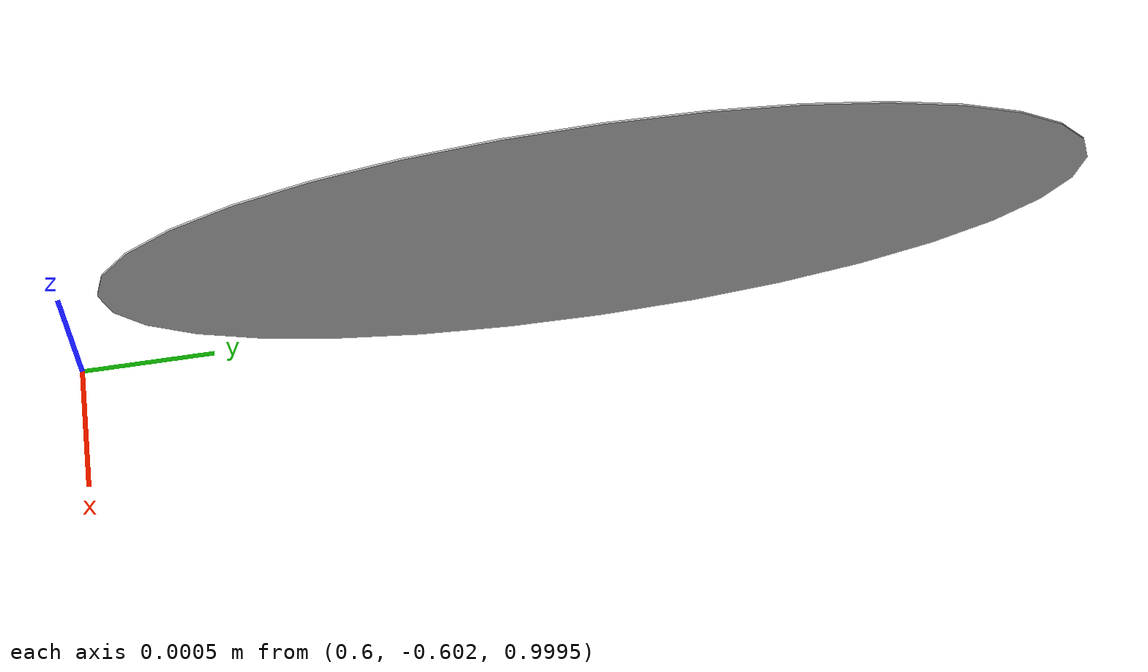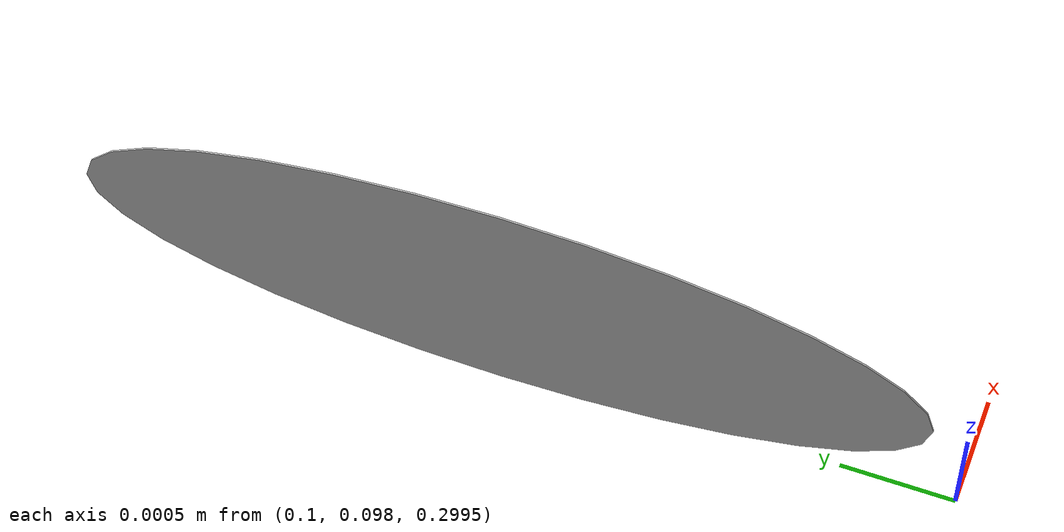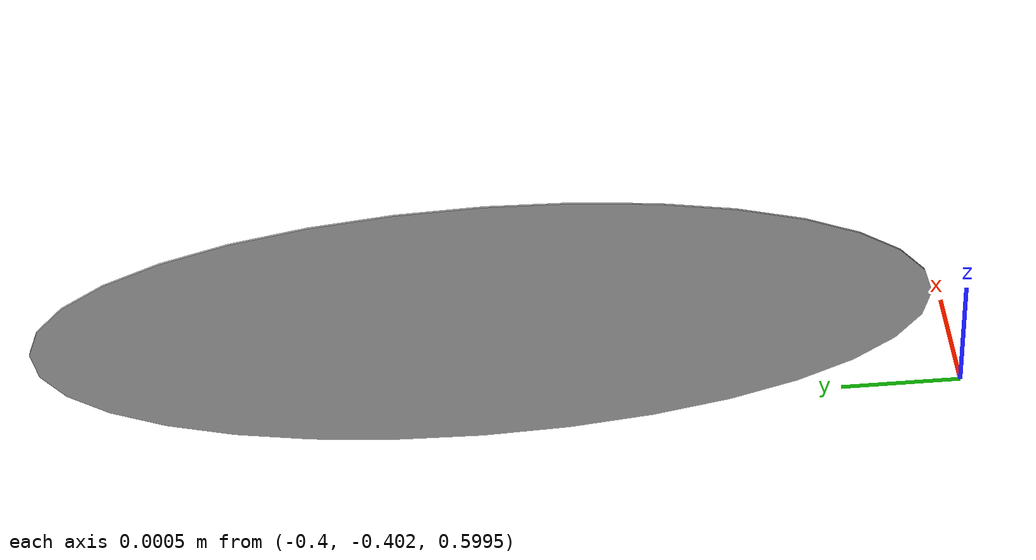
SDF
<sdf version="1.4">
	<world name="default">
		<!-- Lights -->
		<include>
			<uri>model://sun</uri>
		</include>

		<model name='ground_plane'>
			<static>1</static>
			<link name='link'>
				<collision name='collision'>
					<geometry>
						<plane>
							<normal>0 0 1</normal>
							<size>100 100</size>
						</plane>
					</geometry>
					<surface>
						<friction>
							<ode>
								<mu>100</mu>
								<mu2>50</mu2>
							</ode>
						</friction>
						<bounce/>
						<contact>
							<ode/>
						</contact>
					</surface>
					<max_contacts>10</max_contacts>
				</collision>
				<visual name='visual'>
					<cast_shadows>0</cast_shadows>
					<geometry>
						<plane>
							<normal>0 0 1</normal>
							<size>100 100</size>
						</plane>
					</geometry>
					<material>
						<script>
							<uri>file://media/materials/scripts/gazebo.material</uri>
							<name>Gazebo/Grey</name>
						</script>
					</material>
				</visual>
				<velocity_decay>
					<linear>0</linear>
					<angular>0</angular>
				</velocity_decay>
				<self_collide>0</self_collide>
				<kinematic>0</kinematic>
				<gravity>1</gravity>
			</link>
			<!-- camera -->
			<link name='camera_link'>
				<pose>0 0 2.4384 0 1.57 1.57</pose> <!-- camera placed at a heigth of 8 feet-->
				<inertial>
					<mass>0.1</mass>
					<inertia>
						<ixx>1</ixx>
						<ixy>0</ixy>
						<ixz>0</ixz>
						<iyy>1</iyy>
						<iyz>0</iyz>
						<izz>1</izz>
					</inertia>
				</inertial>
				<collision name='collision'>
					<geometry>
						<box>
							<size>0.001 0.001 0.001</size>
						</box>
					</geometry>
					<max_contacts>10</max_contacts>
					<surface>
						<bounce/>
						<friction>
							<ode/>
						</friction>
						<contact>
							<ode/>
						</contact>
					</surface>
				</collision>
				<visual name='visual'>
					<geometry>
						<box>
							<size>0.001 0.001 0.001</size>
						</box>
					</geometry>
				</visual>
				<sensor name='camera' type='camera'>
					<camera name='overhead_cam'>
						<horizontal_fov>1.0</horizontal_fov>
						<image>
							<width>1280</width>
							<height>1280</height>
						</image>
						<clip>
							<near>0.1</near>
							<far>200</far>
						</clip>

					</camera>
					<plugin name='camera_control' filename='libgazebo_ros_camera.so'>
						<cameraName>/overhead_cam</cameraName>
						<alwaysOn>true</alwaysOn>
						<updateRate>30</updateRate>
						<imageTopicName>/overhead_cam/image_rect</imageTopicName>
						<cameraInfoTopicName>/overhead_cam/camera_info</cameraInfoTopicName>
						<frameName>overhead_cam</frameName>
					</plugin>

					<always_on>1</always_on>
					<update_rate>30</update_rate>
					<visualize>0</visualize>
				</sensor>
				<velocity_decay>
					<linear>0</linear>
					<angular>0</angular>
				</velocity_decay>
				<self_collide>0</self_collide>
				<kinematic>0</kinematic>
				<gravity>1</gravity>
			</link>
			<!-- camera link complete -->

			<!-- whycon markers -->
		</model>
		<model name="Marker1">
			<static>true</static>
			<link name="link">
				<pose>0 0 0.2 0 1.570796327 0</pose>
				<visual name="visual">
					<geometry>
						<mesh>
							<uri>model://whycon_marker/meshes/whycon_marker.dae</uri>
							<scale>0.025 0.075 0.075</scale>
						</mesh>
					</geometry>
				</visual>
			</link>
		</model>
		<model name="Marker2">
			<static>true</static>
			<link name="link">
				<pose>0.1 0.1 0.3 0 1.570796327 0</pose>
				<visual name="visual">
					<geometry>
						<mesh>
							<uri>file://models/whycon_marker/meshes/whycon_marker.dae</uri>
							<scale>0.025 0.075 0.075</scale>
						</mesh>
					</geometry>
				</visual>
			</link>
		</model>
		<model name="Marker3">
			<static>true</static>
			<link name="link">
				<pose>-0.2 0.2 0.4 0 1.570796327 0</pose>
				<visual name="visual">
					<geometry>
						<mesh>
							<uri>file://models/whycon_marker/meshes/whycon_marker.dae</uri>
							<scale>0.025 0.075 0.075</scale>
						</mesh>
					</geometry>
				</visual>
			</link>
		</model>
		<model name="Marker4">
			<static>true</static>
			<link name="link">
				<pose>-0.4 -0.4 0.6 0 1.570796327 0</pose>
				<visual name="visual">
					<geometry>
						<mesh>
							<uri>file://models/whycon_marker/meshes/whycon_marker.dae</uri>
							<scale>0.025 0.075 0.075</scale>
						</mesh>
					</geometry>
				</visual>
			</link>
		</model>
		<model name="Marker5">
			<static>true</static>
			<link name="link">
				<pose>0.6 -0.6 1.0 0 1.570796327 0</pose>
				<visual name="visual">
					<geometry>
						<mesh>
					<uri>file://models/whycon_marker/meshes/whycon_marker.dae</uri>
							<scale>0.025 0.075 0.075</scale>
						</mesh>
					</geometry>
				</visual>
			</link>
		</model>

		<plugin name="ros_interface_plugin" filename="librotors_gazebo_ros_interface_plugin.so"/>

		<spherical_coordinates>
			<surface_model>EARTH_WGS84</surface_model>
			<latitude_deg>47.3667</latitude_deg>
			<longitude_deg>8.5500</longitude_deg>
			<elevation>500.0</elevation>
			<heading_deg>0</heading_deg>
		</spherical_coordinates>
		<physics type='ode'>
			<ode>
				<solver>
					<type>quick</type>
					<iters>1000</iters>
					<sor>1.3</sor>
				</solver>
				<constraints>
					<cfm>0</cfm>
					<erp>0.2</erp>
					<contact_max_correcting_vel>100</contact_max_correcting_vel>
					<contact_surface_layer>0.001</contact_surface_layer>
				</constraints>
			</ode>
			<max_step_size>0.001</max_step_size>
			<real_time_factor>1</real_time_factor>
			<real_time_update_rate>1000</real_time_update_rate>
			<gravity>0 0 -9.8</gravity>
		</physics>
	</world>
</sdf>
